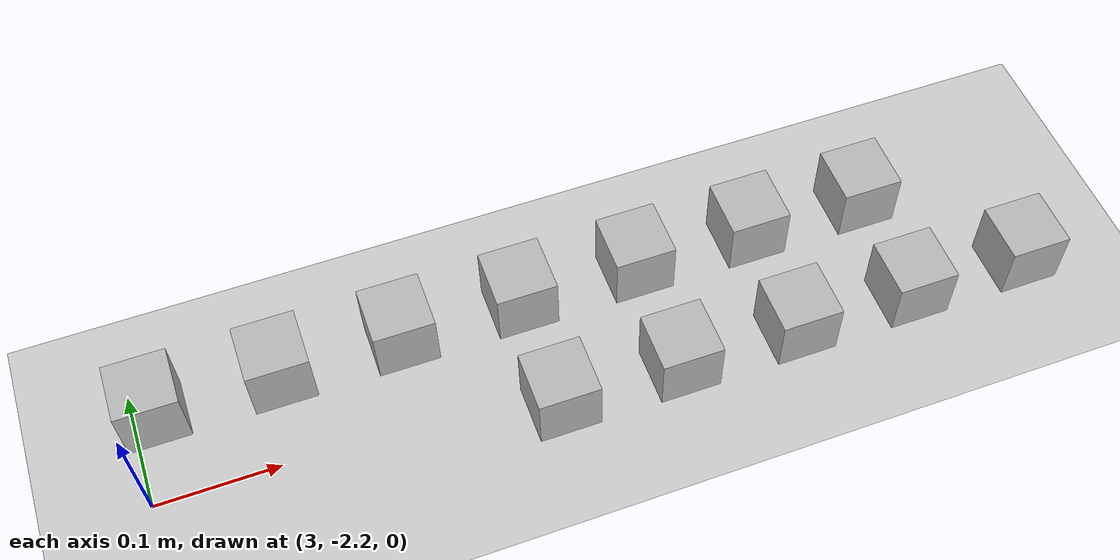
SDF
<sdf version="1.4">
 <world name="default">
  <model name="ground_plane">
   <static>1</static>
   <link name="link">
    <collision name="collision">
     <geometry><plane><normal>0 0 1</normal><size>100 100</size></plane></geometry>
     <surface><friction><ode><mu>100</mu><mu2>50</mu2></ode></friction></surface>
    </collision>
    <visual name="visual">
     <cast_shadows>0</cast_shadows>
     <geometry><plane><normal>0 0 1</normal><size>100 100</size></plane></geometry>
     <material>
      <script><uri>file://media/materials/scripts/gazebo.material</uri><name>Gazebo/Grey</name></script>
     </material>
    </visual>
    <velocity_decay><linear>0</linear><angular>0</angular></velocity_decay>
   </link>
  </model>
  <model name="at115">
   <static>0</static>
   <link name="link">
    <inertial>
     <mass>0.01</mass>
     <inertia><ixx>4e-05</ixx><ixy>0</ixy><ixz>0</ixz><iyy>4e-05</iyy><iyz>0</iyz><izz>4e-05</izz></inertia>
    </inertial>
    <visual name="visual">
     <geometry><box><size>0.05 0.05 0.05</size></box></geometry>
     <material>
      <script>
       <uri>model://at0/materials/scripts</uri>
       <uri>model://at0/materials/textures</uri>
       <name>at0/Diffuse</name>
      </script>
     </material>
    </visual>
    <collision name="collision">
     <geometry><box><size>0.05 0.05 0.05</size></box></geometry>
     <surface><friction><ode><mu>0.8</mu><mu2>0.7</mu2></ode></friction></surface>
    </collision>
    <velocity_decay><linear>0</linear><angular>0</angular></velocity_decay>
   </link>
   <pose>3.31655 -2.22401 0.025 0 -0 0</pose>
  </model>
  <model name="at116">
   <static>0</static>
   <link name="link">
    <inertial>
     <mass>0.01</mass>
     <inertia><ixx>4e-05</ixx><ixy>0</ixy><ixz>0</ixz><iyy>4e-05</iyy><iyz>0</iyz><izz>4e-05</izz></inertia>
    </inertial>
    <visual name="visual">
     <geometry><box><size>0.05 0.05 0.05</size></box></geometry>
     <material>
      <script>
       <uri>model://at0/materials/scripts</uri>
       <uri>model://at0/materials/textures</uri>
       <name>at0/Diffuse</name>
      </script>
     </material>
    </visual>
    <collision name="collision">
     <geometry><box><size>0.05 0.05 0.05</size></box></geometry>
     <surface><friction><ode><mu>0.8</mu><mu2>0.7</mu2></ode></friction></surface>
    </collision>
    <velocity_decay><linear>0</linear><angular>0</angular></velocity_decay>
   </link>
   <pose>3.41655 -2.22401 0.025 0 -0 0</pose>
  </model>
  <model name="at117">
   <static>0</static>
   <link name="link">
    <inertial>
     <mass>0.01</mass>
     <inertia><ixx>4e-05</ixx><ixy>0</ixy><ixz>0</ixz><iyy>4e-05</iyy><iyz>0</iyz><izz>4e-05</izz></inertia>
    </inertial>
    <visual name="visual">
     <geometry><box><size>0.05 0.05 0.05</size></box></geometry>
     <material>
      <script>
       <uri>model://at0/materials/scripts</uri>
       <uri>model://at0/materials/textures</uri>
       <name>at0/Diffuse</name>
      </script>
     </material>
    </visual>
    <collision name="collision">
     <geometry><box><size>0.05 0.05 0.05</size></box></geometry>
     <surface><friction><ode><mu>0.8</mu><mu2>0.7</mu2></ode></friction></surface>
    </collision>
    <velocity_decay><linear>0</linear><angular>0</angular></velocity_decay>
   </link>
   <pose>3.51655 -2.22401 0.025 0 -0 0</pose>
  </model>
  <model name="at118">
   <static>0</static>
   <link name="link">
    <inertial>
     <mass>0.01</mass>
     <inertia><ixx>4e-05</ixx><ixy>0</ixy><ixz>0</ixz><iyy>4e-05</iyy><iyz>0</iyz><izz>4e-05</izz></inertia>
    </inertial>
    <visual name="visual">
     <geometry><box><size>0.05 0.05 0.05</size></box></geometry>
     <material>
      <script>
       <uri>model://at0/materials/scripts</uri>
       <uri>model://at0/materials/textures</uri>
       <name>at0/Diffuse</name>
      </script>
     </material>
    </visual>
    <collision name="collision">
     <geometry><box><size>0.05 0.05 0.05</size></box></geometry>
     <surface><friction><ode><mu>0.8</mu><mu2>0.7</mu2></ode></friction></surface>
    </collision>
    <velocity_decay><linear>0</linear><angular>0</angular></velocity_decay>
   </link>
   <pose>3.61655 -2.22401 0.025 0 -0 0</pose>
  </model>
  <model name="at119">
   <static>0</static>
   <link name="link">
    <inertial>
     <mass>0.01</mass>
     <inertia><ixx>4e-05</ixx><ixy>0</ixy><ixz>0</ixz><iyy>4e-05</iyy><iyz>0</iyz><izz>4e-05</izz></inertia>
    </inertial>
    <visual name="visual">
     <geometry><box><size>0.05 0.05 0.05</size></box></geometry>
     <material>
      <script>
       <uri>model://at0/materials/scripts</uri>
       <uri>model://at0/materials/textures</uri>
       <name>at0/Diffuse</name>
      </script>
     </material>
    </visual>
    <collision name="collision">
     <geometry><box><size>0.05 0.05 0.05</size></box></geometry>
     <surface><friction><ode><mu>0.8</mu><mu2>0.7</mu2></ode></friction></surface>
    </collision>
    <velocity_decay><linear>0</linear><angular>0</angular></velocity_decay>
   </link>
   <pose>3.71655 -2.22401 0.025 0 -0 0</pose>
  </model>
  <model name="at120">
   <static>0</static>
   <link name="link">
    <inertial>
     <mass>0.01</mass>
     <inertia><ixx>4e-05</ixx><ixy>0</ixy><ixz>0</ixz><iyy>4e-05</iyy><iyz>0</iyz><izz>4e-05</izz></inertia>
    </inertial>
    <visual name="visual">
     <geometry><box><size>0.05 0.05 0.05</size></box></geometry>
     <material>
      <script>
       <uri>model://at0/materials/scripts</uri>
       <uri>model://at0/materials/textures</uri>
       <name>at0/Diffuse</name>
      </script>
     </material>
    </visual>
    <collision name="collision">
     <geometry><box><size>0.05 0.05 0.05</size></box></geometry>
     <surface><friction><ode><mu>0.8</mu><mu2>0.7</mu2></ode></friction></surface>
    </collision>
    <velocity_decay><linear>0</linear><angular>0</angular></velocity_decay>
   </link>
   <pose>3.01655 -2.12401 0.025 0 -0 0</pose>
  </model>
  <model name="at121">
   <static>0</static>
   <link name="link">
    <inertial>
     <mass>0.01</mass>
     <inertia><ixx>4e-05</ixx><ixy>0</ixy><ixz>0</ixz><iyy>4e-05</iyy><iyz>0</iyz><izz>4e-05</izz></inertia>
    </inertial>
    <visual name="visual">
     <geometry><box><size>0.05 0.05 0.05</size></box></geometry>
     <material>
      <script>
       <uri>model://at0/materials/scripts</uri>
       <uri>model://at0/materials/textures</uri>
       <name>at0/Diffuse</name>
      </script>
     </material>
    </visual>
    <collision name="collision">
     <geometry><box><size>0.05 0.05 0.05</size></box></geometry>
     <surface><friction><ode><mu>0.8</mu><mu2>0.7</mu2></ode></friction></surface>
    </collision>
    <velocity_decay><linear>0</linear><angular>0</angular></velocity_decay>
   </link>
   <pose>3.11655 -2.12401 0.025 0 -0 0</pose>
  </model>
  <model name="at122">
   <static>0</static>
   <link name="link">
    <inertial>
     <mass>0.01</mass>
     <inertia><ixx>4e-05</ixx><ixy>0</ixy><ixz>0</ixz><iyy>4e-05</iyy><iyz>0</iyz><izz>4e-05</izz></inertia>
    </inertial>
    <visual name="visual">
     <geometry><box><size>0.05 0.05 0.05</size></box></geometry>
     <material>
      <script>
       <uri>model://at0/materials/scripts</uri>
       <uri>model://at0/materials/textures</uri>
       <name>at0/Diffuse</name>
      </script>
     </material>
    </visual>
    <collision name="collision">
     <geometry><box><size>0.05 0.05 0.05</size></box></geometry>
     <surface><friction><ode><mu>0.8</mu><mu2>0.7</mu2></ode></friction></surface>
    </collision>
    <velocity_decay><linear>0</linear><angular>0</angular></velocity_decay>
   </link>
   <pose>3.21655 -2.12401 0.025 0 -0 0</pose>
  </model>
  <model name="at123">
   <static>0</static>
   <link name="link">
    <inertial>
     <mass>0.01</mass>
     <inertia><ixx>4e-05</ixx><ixy>0</ixy><ixz>0</ixz><iyy>4e-05</iyy><iyz>0</iyz><izz>4e-05</izz></inertia>
    </inertial>
    <visual name="visual">
     <geometry><box><size>0.05 0.05 0.05</size></box></geometry>
     <material>
      <script>
       <uri>model://at0/materials/scripts</uri>
       <uri>model://at0/materials/textures</uri>
       <name>at0/Diffuse</name>
      </script>
     </material>
    </visual>
    <collision name="collision">
     <geometry><box><size>0.05 0.05 0.05</size></box></geometry>
     <surface><friction><ode><mu>0.8</mu><mu2>0.7</mu2></ode></friction></surface>
    </collision>
    <velocity_decay><linear>0</linear><angular>0</angular></velocity_decay>
   </link>
   <pose>3.31655 -2.12401 0.025 0 -0 0</pose>
  </model>
  <model name="at124">
   <static>0</static>
   <link name="link">
    <inertial>
     <mass>0.01</mass>
     <inertia><ixx>4e-05</ixx><ixy>0</ixy><ixz>0</ixz><iyy>4e-05</iyy><iyz>0</iyz><izz>4e-05</izz></inertia>
    </inertial>
    <visual name="visual">
     <geometry><box><size>0.05 0.05 0.05</size></box></geometry>
     <material>
      <script>
       <uri>model://at0/materials/scripts</uri>
       <uri>model://at0/materials/textures</uri>
       <name>at0/Diffuse</name>
      </script>
     </material>
    </visual>
    <collision name="collision">
     <geometry><box><size>0.05 0.05 0.05</size></box></geometry>
     <surface><friction><ode><mu>0.8</mu><mu2>0.7</mu2></ode></friction></surface>
    </collision>
    <velocity_decay><linear>0</linear><angular>0</angular></velocity_decay>
   </link>
   <pose>3.41655 -2.12401 0.025 0 -0 0</pose>
  </model>
  <model name="at125">
   <static>0</static>
   <link name="link">
    <inertial>
     <mass>0.01</mass>
     <inertia><ixx>4e-05</ixx><ixy>0</ixy><ixz>0</ixz><iyy>4e-05</iyy><iyz>0</iyz><izz>4e-05</izz></inertia>
    </inertial>
    <visual name="visual">
     <geometry><box><size>0.05 0.05 0.05</size></box></geometry>
     <material>
      <script>
       <uri>model://at0/materials/scripts</uri>
       <uri>model://at0/materials/textures</uri>
       <name>at0/Diffuse</name>
      </script>
     </material>
    </visual>
    <collision name="collision">
     <geometry><box><size>0.05 0.05 0.05</size></box></geometry>
     <surface><friction><ode><mu>0.8</mu><mu2>0.7</mu2></ode></friction></surface>
    </collision>
    <velocity_decay><linear>0</linear><angular>0</angular></velocity_decay>
   </link>
   <pose>3.51655 -2.12401 0.025 0 -0 0</pose>
  </model>
  <model name="at126">
   <static>0</static>
   <link name="link">
    <inertial>
     <mass>0.01</mass>
     <inertia><ixx>4e-05</ixx><ixy>0</ixy><ixz>0</ixz><iyy>4e-05</iyy><iyz>0</iyz><izz>4e-05</izz></inertia>
    </inertial>
    <visual name="visual">
     <geometry><box><size>0.05 0.05 0.05</size></box></geometry>
     <material>
      <script>
       <uri>model://at0/materials/scripts</uri>
       <uri>model://at0/materials/textures</uri>
       <name>at0/Diffuse</name>
      </script>
     </material>
    </visual>
    <collision name="collision">
     <geometry><box><size>0.05 0.05 0.05</size></box></geometry>
     <surface><friction><ode><mu>0.8</mu><mu2>0.7</mu2></ode></friction></surface>
    </collision>
    <velocity_decay><linear>0</linear><angular>0</angular></velocity_decay>
   </link>
   <pose>3.61655 -2.12401 0.025 0 -0 0</pose>
  </model>
 </world>
</sdf>
